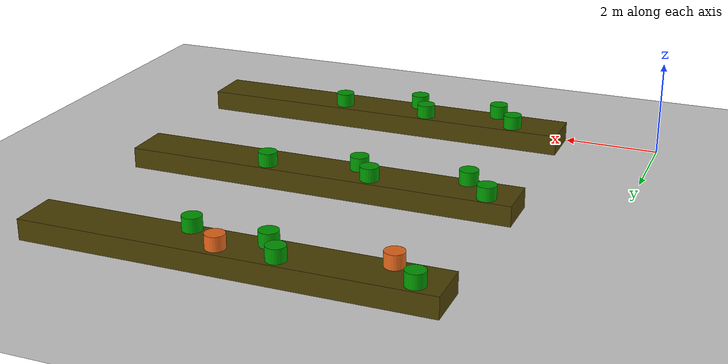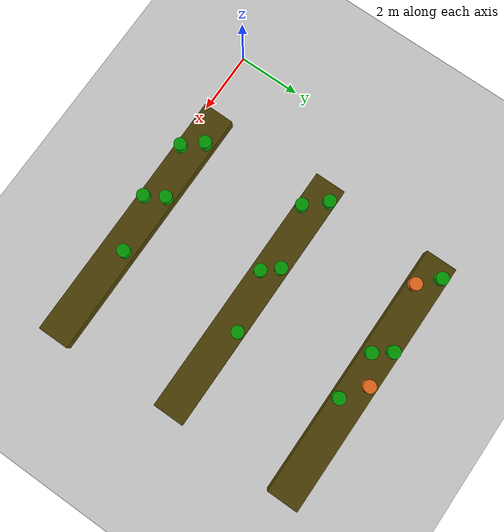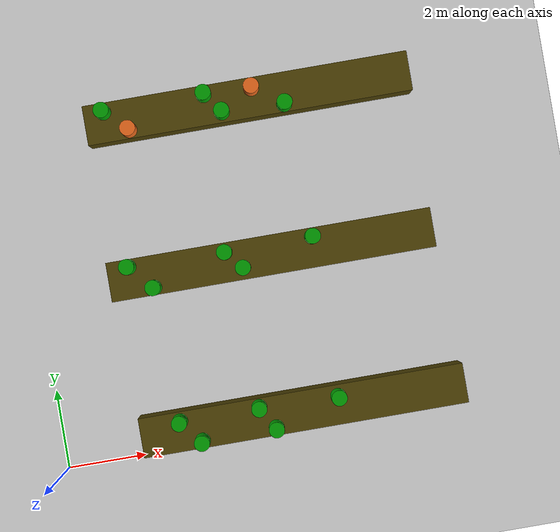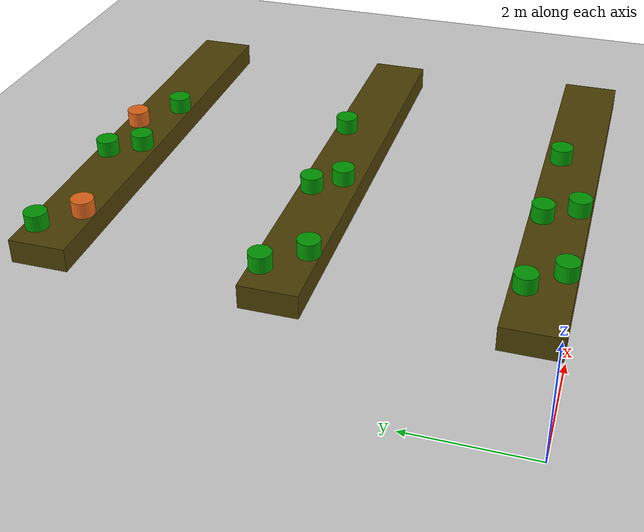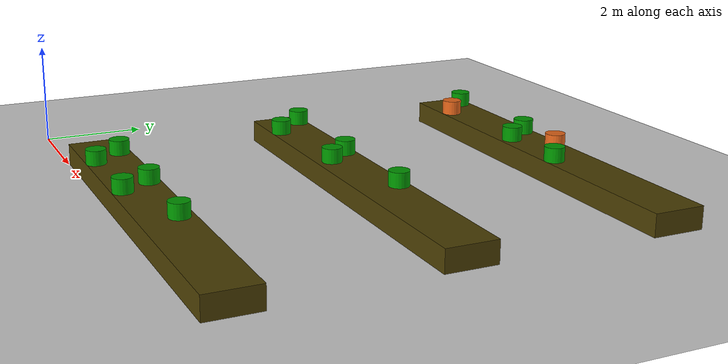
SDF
<sdf version="1.7">
 <world name="default">
  <model name="ground_plane">
   <static>1</static>
   <link name="link">
    <collision name="collision">
     <geometry><plane><normal>0 0 1</normal><size>100 100</size></plane></geometry>
     <surface><friction><ode><mu>100</mu><mu2>50</mu2></ode></friction></surface>
    </collision>
    <visual name="visual">
     <cast_shadows>0</cast_shadows>
     <geometry><plane><normal>0 0 1</normal><size>100 100</size></plane></geometry>
     <material>
      <script><uri>file://media/materials/scripts/gazebo.material</uri><name>Gazebo/Grey</name></script>
     </material>
    </visual>
   </link>
  </model>
  <model name="Test_Bench_brown">
   <link name="link_1">
    <inertial>
     <mass>6.47546</mass>
     <inertia><ixx>0.639529</ixx><ixy>0</ixy><ixz>0</ixz><iyy>122.309</iyy><iyz>0</iyz><izz>122.749</izz></inertia>
    </inertial>
    <pose>0 4e-06 0 0 -0 0</pose>
    <visual name="visual">
     <geometry><box><size>8.26903 1 0.430283</size></box></geometry>
     <material>
      <lighting>1</lighting>
      <script><uri>file://media/materials/scripts/gazebo.material</uri><name>Gazebo/Grey</name></script>
      <shader type="pixel"><normal_map>__default__</normal_map></shader>
      <diffuse>0.298 0.247 0.016 1</diffuse>
      <ambient>0.3 0.3 0.3 1</ambient>
      <specular>0.01 0.01 0.01 1</specular>
      <emissive>0 0 0 1</emissive>
     </material>
    </visual>
    <collision name="collision">
     <geometry><box><size>8.26903 1 0.430283</size></box></geometry>
     <surface>
      <friction>
       <ode><mu>1</mu><mu2>1</mu2><fdir1>0 0 0</fdir1><slip1>0</slip1><slip2>0</slip2></ode>
       <torsional>
        <coefficient>1</coefficient>
        <patch_radius>0</patch_radius>
        <surface_radius>0</surface_radius>
        <use_patch_radius>1</use_patch_radius>
        <ode><slip>0</slip></ode>
       </torsional>
      </friction>
      <bounce><restitution_coefficient>0</restitution_coefficient><threshold>1e+06</threshold></bounce>
      <contact>
       <collide_without_contact>0</collide_without_contact>
       <collide_without_contact_bitmask>1</collide_without_contact_bitmask>
       <collide_bitmask>1</collide_bitmask>
       <ode>
        <soft_cfm>0</soft_cfm>
        <soft_erp>0.2</soft_erp>
        <kp>1e+13</kp>
        <kd>1</kd>
        <max_vel>0.01</max_vel>
        <min_depth>0</min_depth>
       </ode>
       <bullet>
        <split_impulse>1</split_impulse>
        <split_impulse_penetration_threshold>-0.01</split_impulse_penetration_threshold>
        <soft_cfm>0</soft_cfm>
        <soft_erp>0.2</soft_erp>
        <kp>1e+13</kp>
        <kd>1</kd>
       </bullet>
      </contact>
     </surface>
    </collision>
   </link>
   <static>0</static>
   <pose>6.16421 0.520482 0.215125 -1.4e-05 -0 1e-05</pose>
  </model>
  <model name="Test_pot_green">
   <link name="link_0">
    <inertial>
     <mass>0.044841</mass>
     <inertia>
      <ixx>0.00074807</ixx>
      <ixy>0</ixy>
      <ixz>0</ixz>
      <iyy>0.00074807</iyy>
      <iyz>0</iyz>
      <izz>0.00086495</izz>
     </inertia>
    </inertial>
    <pose>3e-06 1e-06 0 0 -0 0</pose>
    <visual name="visual">
     <geometry><cylinder><radius>0.196415</radius><length>0.290612</length></cylinder></geometry>
     <material>
      <lighting>1</lighting>
      <script><uri>file://media/materials/scripts/gazebo.material</uri><name>Gazebo/Grey</name></script>
      <shader type="pixel"><normal_map>__default__</normal_map></shader>
      <diffuse>0 0.6 0 0</diffuse>
      <ambient>0.3 0.3 0.3 1</ambient>
      <specular>0.01 0.01 0.01 1</specular>
      <emissive>0 0 0 1</emissive>
     </material>
    </visual>
    <collision name="collision">
     <geometry><cylinder><radius>0.196415</radius><length>0.290612</length></cylinder></geometry>
     <surface>
      <friction>
       <ode><mu>1</mu><mu2>1</mu2><fdir1>0 0 0</fdir1><slip1>0</slip1><slip2>0</slip2></ode>
       <torsional>
        <coefficient>1</coefficient>
        <patch_radius>0</patch_radius>
        <surface_radius>0</surface_radius>
        <use_patch_radius>1</use_patch_radius>
        <ode><slip>0</slip></ode>
       </torsional>
      </friction>
      <bounce><restitution_coefficient>0</restitution_coefficient><threshold>1e+06</threshold></bounce>
      <contact>
       <collide_without_contact>0</collide_without_contact>
       <collide_without_contact_bitmask>1</collide_without_contact_bitmask>
       <collide_bitmask>1</collide_bitmask>
       <ode>
        <soft_cfm>0</soft_cfm>
        <soft_erp>0.2</soft_erp>
        <kp>1e+13</kp>
        <kd>1</kd>
        <max_vel>0.01</max_vel>
        <min_depth>0</min_depth>
       </ode>
       <bullet>
        <split_impulse>1</split_impulse>
        <split_impulse_penetration_threshold>-0.01</split_impulse_penetration_threshold>
        <soft_cfm>0</soft_cfm>
        <soft_erp>0.2</soft_erp>
        <kp>1e+13</kp>
        <kd>1</kd>
       </bullet>
      </contact>
     </surface>
    </collision>
   </link>
   <static>0</static>
   <pose>3.5522 0.210064 0.575581 6.3e-05 -8.7e-05 0.011992</pose>
  </model>
  <model name="Test_Bench_brown_clone_0">
   <link name="link_1">
    <inertial>
     <mass>6.47546</mass>
     <inertia><ixx>0.639529</ixx><ixy>0</ixy><ixz>0</ixz><iyy>122.309</iyy><iyz>0</iyz><izz>122.749</izz></inertia>
    </inertial>
    <pose>0 4e-06 0 0 -0 0</pose>
    <visual name="visual">
     <geometry><box><size>8.26902 1 0.430283</size></box></geometry>
     <material>
      <lighting>1</lighting>
      <script><uri>file://media/materials/scripts/gazebo.material</uri><name>Gazebo/Grey</name></script>
      <shader type="pixel"><normal_map>__default__</normal_map></shader>
      <diffuse>0.298 0.247 0.016 1</diffuse>
      <ambient>0.3 0.3 0.3 1</ambient>
      <specular>0.01 0.01 0.01 1</specular>
      <emissive>0 0 0 1</emissive>
     </material>
    </visual>
    <collision name="collision">
     <geometry><box><size>8.26902 1 0.430283</size></box></geometry>
     <surface>
      <friction>
       <ode><mu>1</mu><mu2>1</mu2><fdir1>0 0 0</fdir1><slip1>0</slip1><slip2>0</slip2></ode>
       <torsional>
        <coefficient>1</coefficient>
        <patch_radius>0</patch_radius>
        <surface_radius>0</surface_radius>
        <use_patch_radius>1</use_patch_radius>
        <ode><slip>0</slip></ode>
       </torsional>
      </friction>
      <bounce><restitution_coefficient>0</restitution_coefficient><threshold>1e+06</threshold></bounce>
      <contact>
       <collide_without_contact>0</collide_without_contact>
       <collide_without_contact_bitmask>1</collide_without_contact_bitmask>
       <collide_bitmask>1</collide_bitmask>
       <ode>
        <soft_cfm>0</soft_cfm>
        <soft_erp>0.2</soft_erp>
        <kp>1e+13</kp>
        <kd>1</kd>
        <max_vel>0.01</max_vel>
        <min_depth>0</min_depth>
       </ode>
       <bullet>
        <split_impulse>1</split_impulse>
        <split_impulse_penetration_threshold>-0.01</split_impulse_penetration_threshold>
        <soft_cfm>0</soft_cfm>
        <soft_erp>0.2</soft_erp>
        <kp>1e+13</kp>
        <kd>1</kd>
       </bullet>
      </contact>
     </surface>
    </collision>
   </link>
   <static>0</static>
   <pose>6.02902 4.51582 0.210183 0.000215 -1.1e-05 2e-06</pose>
  </model>
  <model name="Test_Bench_brown_clone_2">
   <link name="link_1">
    <inertial>
     <mass>6.47546</mass>
     <inertia><ixx>0.639529</ixx><ixy>0</ixy><ixz>0</ixz><iyy>122.309</iyy><iyz>0</iyz><izz>122.749</izz></inertia>
    </inertial>
    <pose>0 4e-06 0 0 -0 0</pose>
    <visual name="visual">
     <geometry><box><size>8.26902 1 0.430283</size></box></geometry>
     <material>
      <lighting>1</lighting>
      <script><uri>file://media/materials/scripts/gazebo.material</uri><name>Gazebo/Grey</name></script>
      <shader type="pixel"><normal_map>__default__</normal_map></shader>
      <diffuse>0.298 0.247 0.016 1</diffuse>
      <ambient>0.3 0.3 0.3 1</ambient>
      <specular>0.01 0.01 0.01 1</specular>
      <emissive>0 0 0 1</emissive>
     </material>
    </visual>
    <collision name="collision">
     <geometry><box><size>8.26902 1 0.430283</size></box></geometry>
     <surface>
      <friction>
       <ode><mu>1</mu><mu2>1</mu2><fdir1>0 0 0</fdir1><slip1>0</slip1><slip2>0</slip2></ode>
       <torsional>
        <coefficient>1</coefficient>
        <patch_radius>0</patch_radius>
        <surface_radius>0</surface_radius>
        <use_patch_radius>1</use_patch_radius>
        <ode><slip>0</slip></ode>
       </torsional>
      </friction>
      <bounce><restitution_coefficient>0</restitution_coefficient><threshold>1e+06</threshold></bounce>
      <contact>
       <collide_without_contact>0</collide_without_contact>
       <collide_without_contact_bitmask>1</collide_without_contact_bitmask>
       <collide_bitmask>1</collide_bitmask>
       <ode>
        <soft_cfm>0</soft_cfm>
        <soft_erp>0.2</soft_erp>
        <kp>1e+13</kp>
        <kd>1</kd>
        <max_vel>0.01</max_vel>
        <min_depth>0</min_depth>
       </ode>
       <bullet>
        <split_impulse>1</split_impulse>
        <split_impulse_penetration_threshold>-0.01</split_impulse_penetration_threshold>
        <soft_cfm>0</soft_cfm>
        <soft_erp>0.2</soft_erp>
        <kp>1e+13</kp>
        <kd>1</kd>
       </bullet>
      </contact>
     </surface>
    </collision>
   </link>
   <static>0</static>
   <pose>6.11341 8.4951 0.215141 0 -0 -3e-06</pose>
  </model>
  <model name="Test_pot_green_clone">
   <link name="link_0">
    <inertial>
     <mass>0.044841</mass>
     <inertia>
      <ixx>0.00074807</ixx>
      <ixy>0</ixy>
      <ixz>0</ixz>
      <iyy>0.00074807</iyy>
      <iyz>0</iyz>
      <izz>0.00086495</izz>
     </inertia>
    </inertial>
    <pose>3e-06 1e-06 0 0 -0 0</pose>
    <visual name="visual">
     <geometry><cylinder><radius>0.196415</radius><length>0.290612</length></cylinder></geometry>
     <material>
      <lighting>1</lighting>
      <script><uri>file://media/materials/scripts/gazebo.material</uri><name>Gazebo/Grey</name></script>
      <shader type="pixel"><normal_map>__default__</normal_map></shader>
      <diffuse>0 0.6 0 0</diffuse>
      <ambient>0.3 0.3 0.3 1</ambient>
      <specular>0.01 0.01 0.01 1</specular>
      <emissive>0 0 0 1</emissive>
     </material>
    </visual>
    <collision name="collision">
     <geometry><cylinder><radius>0.196415</radius><length>0.290612</length></cylinder></geometry>
     <surface>
      <friction>
       <ode><mu>1</mu><mu2>1</mu2><fdir1>0 0 0</fdir1><slip1>0</slip1><slip2>0</slip2></ode>
       <torsional>
        <coefficient>1</coefficient>
        <patch_radius>0</patch_radius>
        <surface_radius>0</surface_radius>
        <use_patch_radius>1</use_patch_radius>
        <ode><slip>0</slip></ode>
       </torsional>
      </friction>
      <bounce><restitution_coefficient>0</restitution_coefficient><threshold>1e+06</threshold></bounce>
      <contact>
       <collide_without_contact>0</collide_without_contact>
       <collide_without_contact_bitmask>1</collide_without_contact_bitmask>
       <collide_bitmask>1</collide_bitmask>
       <ode>
        <soft_cfm>0</soft_cfm>
        <soft_erp>0.2</soft_erp>
        <kp>1e+13</kp>
        <kd>1</kd>
        <max_vel>0.01</max_vel>
        <min_depth>0</min_depth>
       </ode>
       <bullet>
        <split_impulse>1</split_impulse>
        <split_impulse_penetration_threshold>-0.01</split_impulse_penetration_threshold>
        <soft_cfm>0</soft_cfm>
        <soft_erp>0.2</soft_erp>
        <kp>1e+13</kp>
        <kd>1</kd>
       </bullet>
      </contact>
     </surface>
    </collision>
   </link>
   <static>0</static>
   <pose>3.00083 4.20327 0.570529 0.000259 -1.5e-05 0.007801</pose>
  </model>
  <model name="Test_pot_green_clone_5">
   <link name="link_0">
    <inertial>
     <mass>0.044841</mass>
     <inertia>
      <ixx>0.00074807</ixx>
      <ixy>0</ixy>
      <ixz>0</ixz>
      <iyy>0.00074807</iyy>
      <iyz>0</iyz>
      <izz>0.00086495</izz>
     </inertia>
    </inertial>
    <pose>3e-06 1e-06 0 0 -0 0</pose>
    <visual name="visual">
     <geometry><cylinder><radius>0.196415</radius><length>0.290612</length></cylinder></geometry>
     <material>
      <lighting>1</lighting>
      <script><uri>file://media/materials/scripts/gazebo.material</uri><name>Gazebo/Grey</name></script>
      <shader type="pixel"><normal_map>__default__</normal_map></shader>
      <diffuse>0 0.6 0 0</diffuse>
      <ambient>0.3 0.3 0.3 1</ambient>
      <specular>0.01 0.01 0.01 1</specular>
      <emissive>0 0 0 1</emissive>
     </material>
    </visual>
    <collision name="collision">
     <geometry><cylinder><radius>0.196415</radius><length>0.290612</length></cylinder></geometry>
     <surface>
      <friction>
       <ode><mu>1</mu><mu2>1</mu2><fdir1>0 0 0</fdir1><slip1>0</slip1><slip2>0</slip2></ode>
       <torsional>
        <coefficient>1</coefficient>
        <patch_radius>0</patch_radius>
        <surface_radius>0</surface_radius>
        <use_patch_radius>1</use_patch_radius>
        <ode><slip>0</slip></ode>
       </torsional>
      </friction>
      <bounce><restitution_coefficient>0</restitution_coefficient><threshold>1e+06</threshold></bounce>
      <contact>
       <collide_without_contact>0</collide_without_contact>
       <collide_without_contact_bitmask>1</collide_without_contact_bitmask>
       <collide_bitmask>1</collide_bitmask>
       <ode>
        <soft_cfm>0</soft_cfm>
        <soft_erp>0.2</soft_erp>
        <kp>1e+13</kp>
        <kd>1</kd>
        <max_vel>0.01</max_vel>
        <min_depth>0</min_depth>
       </ode>
       <bullet>
        <split_impulse>1</split_impulse>
        <split_impulse_penetration_threshold>-0.01</split_impulse_penetration_threshold>
        <soft_cfm>0</soft_cfm>
        <soft_erp>0.2</soft_erp>
        <kp>1e+13</kp>
        <kd>1</kd>
       </bullet>
      </contact>
     </surface>
    </collision>
   </link>
   <static>0</static>
   <pose>3.07291 0.783458 0.575572 -3.1e-05 5e-06 0.005861</pose>
  </model>
  <model name="Test_pot_green_clone_6">
   <link name="link_0">
    <inertial>
     <mass>0.044841</mass>
     <inertia>
      <ixx>0.00074807</ixx>
      <ixy>0</ixy>
      <ixz>0</ixz>
      <iyy>0.00074807</iyy>
      <iyz>0</iyz>
      <izz>0.00086495</izz>
     </inertia>
    </inertial>
    <pose>3e-06 1e-06 0 0 -0 0</pose>
    <visual name="visual">
     <geometry><cylinder><radius>0.196415</radius><length>0.290612</length></cylinder></geometry>
     <material>
      <lighting>1</lighting>
      <script><uri>file://media/materials/scripts/gazebo.material</uri><name>Gazebo/Grey</name></script>
      <shader type="pixel"><normal_map>__default__</normal_map></shader>
      <diffuse>0 0.6 0 0</diffuse>
      <ambient>0.3 0.3 0.3 1</ambient>
      <specular>0.01 0.01 0.01 1</specular>
      <emissive>0 0 0 1</emissive>
     </material>
    </visual>
    <collision name="collision">
     <geometry><cylinder><radius>0.196415</radius><length>0.290612</length></cylinder></geometry>
     <surface>
      <friction>
       <ode><mu>1</mu><mu2>1</mu2><fdir1>0 0 0</fdir1><slip1>0</slip1><slip2>0</slip2></ode>
       <torsional>
        <coefficient>1</coefficient>
        <patch_radius>0</patch_radius>
        <surface_radius>0</surface_radius>
        <use_patch_radius>1</use_patch_radius>
        <ode><slip>0</slip></ode>
       </torsional>
      </friction>
      <bounce><restitution_coefficient>0</restitution_coefficient><threshold>1e+06</threshold></bounce>
      <contact>
       <collide_without_contact>0</collide_without_contact>
       <collide_without_contact_bitmask>1</collide_without_contact_bitmask>
       <collide_bitmask>1</collide_bitmask>
       <ode>
        <soft_cfm>0</soft_cfm>
        <soft_erp>0.2</soft_erp>
        <kp>1e+13</kp>
        <kd>1</kd>
        <max_vel>0.01</max_vel>
        <min_depth>0</min_depth>
       </ode>
       <bullet>
        <split_impulse>1</split_impulse>
        <split_impulse_penetration_threshold>-0.01</split_impulse_penetration_threshold>
        <soft_cfm>0</soft_cfm>
        <soft_erp>0.2</soft_erp>
        <kp>1e+13</kp>
        <kd>1</kd>
       </bullet>
      </contact>
     </surface>
    </collision>
   </link>
   <static>0</static>
   <pose>2.44781 4.82061 0.575584 -2.3e-05 8e-06 0.004116</pose>
  </model>
  <model name="Test_pot_green_clone_7">
   <link name="link_0">
    <inertial>
     <mass>0.044841</mass>
     <inertia>
      <ixx>0.00074807</ixx>
      <ixy>0</ixy>
      <ixz>0</ixz>
      <iyy>0.00074807</iyy>
      <iyz>0</iyz>
      <izz>0.00086495</izz>
     </inertia>
    </inertial>
    <pose>3e-06 1e-06 0 0 -0 0</pose>
    <visual name="visual">
     <geometry><cylinder><radius>0.196415</radius><length>0.290612</length></cylinder></geometry>
     <material>
      <lighting>1</lighting>
      <script><uri>file://media/materials/scripts/gazebo.material</uri><name>Gazebo/Grey</name></script>
      <shader type="pixel"><normal_map>__default__</normal_map></shader>
      <diffuse>0 0.6 0 0</diffuse>
      <ambient>0.3 0.3 0.3 1</ambient>
      <specular>0.01 0.01 0.01 1</specular>
      <emissive>0 0 0 1</emissive>
     </material>
    </visual>
    <collision name="collision">
     <geometry><cylinder><radius>0.196415</radius><length>0.290612</length></cylinder></geometry>
     <surface>
      <friction>
       <ode><mu>1</mu><mu2>1</mu2><fdir1>0 0 0</fdir1><slip1>0</slip1><slip2>0</slip2></ode>
       <torsional>
        <coefficient>1</coefficient>
        <patch_radius>0</patch_radius>
        <surface_radius>0</surface_radius>
        <use_patch_radius>1</use_patch_radius>
        <ode><slip>0</slip></ode>
       </torsional>
      </friction>
      <bounce><restitution_coefficient>0</restitution_coefficient><threshold>1e+06</threshold></bounce>
      <contact>
       <collide_without_contact>0</collide_without_contact>
       <collide_without_contact_bitmask>1</collide_without_contact_bitmask>
       <collide_bitmask>1</collide_bitmask>
       <ode>
        <soft_cfm>0</soft_cfm>
        <soft_erp>0.2</soft_erp>
        <kp>1e+13</kp>
        <kd>1</kd>
        <max_vel>0.01</max_vel>
        <min_depth>0</min_depth>
       </ode>
       <bullet>
        <split_impulse>1</split_impulse>
        <split_impulse_penetration_threshold>-0.01</split_impulse_penetration_threshold>
        <soft_cfm>0</soft_cfm>
        <soft_erp>0.2</soft_erp>
        <kp>1e+13</kp>
        <kd>1</kd>
       </bullet>
      </contact>
     </surface>
    </collision>
   </link>
   <static>0</static>
   <pose>7.12233 4.79731 0.575589 -1.4e-05 1e-05 0.005384</pose>
  </model>
  <model name="Test_pot_green_clone_9">
   <link name="link_0">
    <inertial>
     <mass>0.044841</mass>
     <inertia>
      <ixx>0.00074807</ixx>
      <ixy>0</ixy>
      <ixz>0</ixz>
      <iyy>0.00074807</iyy>
      <iyz>0</iyz>
      <izz>0.00086495</izz>
     </inertia>
    </inertial>
    <pose>3e-06 1e-06 0 0 -0 0</pose>
    <visual name="visual">
     <geometry><cylinder><radius>0.196415</radius><length>0.290612</length></cylinder></geometry>
     <material>
      <lighting>1</lighting>
      <script><uri>file://media/materials/scripts/gazebo.material</uri><name>Gazebo/Grey</name></script>
      <shader type="pixel"><normal_map>__default__</normal_map></shader>
      <diffuse>0 0.6 0 0</diffuse>
      <ambient>0.3 0.3 0.3 1</ambient>
      <specular>0.01 0.01 0.01 1</specular>
      <emissive>0 0 0 1</emissive>
     </material>
    </visual>
    <collision name="collision">
     <geometry><cylinder><radius>0.196415</radius><length>0.290612</length></cylinder></geometry>
     <surface>
      <friction>
       <ode><mu>1</mu><mu2>1</mu2><fdir1>0 0 0</fdir1><slip1>0</slip1><slip2>0</slip2></ode>
       <torsional>
        <coefficient>1</coefficient>
        <patch_radius>0</patch_radius>
        <surface_radius>0</surface_radius>
        <use_patch_radius>1</use_patch_radius>
        <ode><slip>0</slip></ode>
       </torsional>
      </friction>
      <bounce><restitution_coefficient>0</restitution_coefficient><threshold>1e+06</threshold></bounce>
      <contact>
       <collide_without_contact>0</collide_without_contact>
       <collide_without_contact_bitmask>1</collide_without_contact_bitmask>
       <collide_bitmask>1</collide_bitmask>
       <ode>
        <soft_cfm>0</soft_cfm>
        <soft_erp>0.2</soft_erp>
        <kp>1e+13</kp>
        <kd>1</kd>
        <max_vel>0.01</max_vel>
        <min_depth>0</min_depth>
       </ode>
       <bullet>
        <split_impulse>1</split_impulse>
        <split_impulse_penetration_threshold>-0.01</split_impulse_penetration_threshold>
        <soft_cfm>0</soft_cfm>
        <soft_erp>0.2</soft_erp>
        <kp>1e+13</kp>
        <kd>1</kd>
       </bullet>
      </contact>
     </surface>
    </collision>
   </link>
   <static>0</static>
   <pose>7.09067 0.736442 0.575559 4e-06 -0 0.005458</pose>
  </model>
  <model name="Test_pot_green_clone_4_clone">
   <link name="link_0">
    <inertial>
     <mass>0.044841</mass>
     <inertia>
      <ixx>0.00074807</ixx>
      <ixy>0</ixy>
      <ixz>0</ixz>
      <iyy>0.00074807</iyy>
      <iyz>0</iyz>
      <izz>0.00086495</izz>
     </inertia>
    </inertial>
    <pose>3e-06 1e-06 0 0 -0 0</pose>
    <visual name="visual">
     <geometry><cylinder><radius>0.196415</radius><length>0.290612</length></cylinder></geometry>
     <material>
      <lighting>1</lighting>
      <script><uri>file://media/materials/scripts/gazebo.material</uri><name>Gazebo/Grey</name></script>
      <shader type="pixel"><normal_map>__default__</normal_map></shader>
      <diffuse>0 0.6 0 0</diffuse>
      <ambient>0.3 0.3 0.3 1</ambient>
      <specular>0.01 0.01 0.01 1</specular>
      <emissive>0 0 0 1</emissive>
     </material>
    </visual>
    <collision name="collision">
     <geometry><cylinder><radius>0.196415</radius><length>0.290612</length></cylinder></geometry>
     <surface>
      <friction>
       <ode><mu>1</mu><mu2>1</mu2><fdir1>0 0 0</fdir1><slip1>0</slip1><slip2>0</slip2></ode>
       <torsional>
        <coefficient>1</coefficient>
        <patch_radius>0</patch_radius>
        <surface_radius>0</surface_radius>
        <use_patch_radius>1</use_patch_radius>
        <ode><slip>0</slip></ode>
       </torsional>
      </friction>
      <bounce><restitution_coefficient>0</restitution_coefficient><threshold>1e+06</threshold></bounce>
      <contact>
       <collide_without_contact>0</collide_without_contact>
       <collide_without_contact_bitmask>1</collide_without_contact_bitmask>
       <collide_bitmask>1</collide_bitmask>
       <ode>
        <soft_cfm>0</soft_cfm>
        <soft_erp>0.2</soft_erp>
        <kp>1e+13</kp>
        <kd>1</kd>
        <max_vel>0.01</max_vel>
        <min_depth>0</min_depth>
       </ode>
       <bullet>
        <split_impulse>1</split_impulse>
        <split_impulse_penetration_threshold>-0.01</split_impulse_penetration_threshold>
        <soft_cfm>0</soft_cfm>
        <soft_erp>0.2</soft_erp>
        <kp>1e+13</kp>
        <kd>1</kd>
       </bullet>
      </contact>
     </surface>
    </collision>
   </link>
   <static>0</static>
   <pose>2.48873 8.75207 0.575603 7.2e-05 3e-06 0.010251</pose>
  </model>
  <model name="Test_pot_green_clone_4_clone_0">
   <link name="link_0">
    <inertial>
     <mass>0.044841</mass>
     <inertia>
      <ixx>0.00074807</ixx>
      <ixy>0</ixy>
      <ixz>0</ixz>
      <iyy>0.00074807</iyy>
      <iyz>0</iyz>
      <izz>0.00086495</izz>
     </inertia>
    </inertial>
    <pose>3e-06 1e-06 0 0 -0 0</pose>
    <visual name="visual">
     <geometry><cylinder><radius>0.196415</radius><length>0.290612</length></cylinder></geometry>
     <material>
      <lighting>1</lighting>
      <script><uri>file://media/materials/scripts/gazebo.material</uri><name>Gazebo/Grey</name></script>
      <shader type="pixel"><normal_map>__default__</normal_map></shader>
      <diffuse>0 0.6 0 0</diffuse>
      <ambient>0.3 0.3 0.3 1</ambient>
      <specular>0.01 0.01 0.01 1</specular>
      <emissive>0 0 0 1</emissive>
     </material>
    </visual>
    <collision name="collision">
     <geometry><cylinder><radius>0.196415</radius><length>0.290612</length></cylinder></geometry>
     <surface>
      <friction>
       <ode><mu>1</mu><mu2>1</mu2><fdir1>0 0 0</fdir1><slip1>0</slip1><slip2>0</slip2></ode>
       <torsional>
        <coefficient>1</coefficient>
        <patch_radius>0</patch_radius>
        <surface_radius>0</surface_radius>
        <use_patch_radius>1</use_patch_radius>
        <ode><slip>0</slip></ode>
       </torsional>
      </friction>
      <bounce><restitution_coefficient>0</restitution_coefficient><threshold>1e+06</threshold></bounce>
      <contact>
       <collide_without_contact>0</collide_without_contact>
       <collide_without_contact_bitmask>1</collide_without_contact_bitmask>
       <collide_bitmask>1</collide_bitmask>
       <ode>
        <soft_cfm>0</soft_cfm>
        <soft_erp>0.2</soft_erp>
        <kp>1e+13</kp>
        <kd>1</kd>
        <max_vel>0.01</max_vel>
        <min_depth>0</min_depth>
       </ode>
       <bullet>
        <split_impulse>1</split_impulse>
        <split_impulse_penetration_threshold>-0.01</split_impulse_penetration_threshold>
        <soft_cfm>0</soft_cfm>
        <soft_erp>0.2</soft_erp>
        <kp>1e+13</kp>
        <kd>1</kd>
       </bullet>
      </contact>
     </surface>
    </collision>
   </link>
   <static>0</static>
   <pose>6.99942 8.18647 0.575608 4e-06 -4.5e-05 0.013471</pose>
  </model>
  <model name="Test_pot_orange_clone_clone_1">
   <link name="link_0">
    <inertial>
     <mass>0.044841</mass>
     <inertia>
      <ixx>0.00074807</ixx>
      <ixy>0</ixy>
      <ixz>0</ixz>
      <iyy>0.00074807</iyy>
      <iyz>0</iyz>
      <izz>0.00086495</izz>
     </inertia>
    </inertial>
    <pose>3e-06 1e-06 -0 0 -0 0</pose>
    <visual name="visual">
     <geometry><cylinder><radius>0.196415</radius><length>0.290612</length></cylinder></geometry>
     <material>
      <lighting>1</lighting>
      <script><uri>file://media/materials/scripts/gazebo.material</uri><name>Gazebo/Grey</name></script>
      <shader type="pixel"><normal_map>__default__</normal_map></shader>
      <ambient>0.3 0.3 0.3 1</ambient>
      <diffuse>0.9 0.4 0.1 1</diffuse>
      <specular>0.01 0.01 0.01 1</specular>
      <emissive>0 0 0 1</emissive>
     </material>
    </visual>
    <collision name="collision">
     <geometry><cylinder><radius>0.196415</radius><length>0.290612</length></cylinder></geometry>
     <surface>
      <friction>
       <ode><mu>1</mu><mu2>1</mu2><fdir1>0 0 0</fdir1><slip1>0</slip1><slip2>0</slip2></ode>
       <torsional>
        <coefficient>1</coefficient>
        <patch_radius>0</patch_radius>
        <surface_radius>0</surface_radius>
        <use_patch_radius>1</use_patch_radius>
        <ode><slip>0</slip></ode>
       </torsional>
      </friction>
      <bounce><restitution_coefficient>0</restitution_coefficient><threshold>1e+06</threshold></bounce>
      <contact>
       <collide_without_contact>0</collide_without_contact>
       <collide_without_contact_bitmask>1</collide_without_contact_bitmask>
       <collide_bitmask>1</collide_bitmask>
       <ode>
        <soft_cfm>0</soft_cfm>
        <soft_erp>0.2</soft_erp>
        <kp>1e+13</kp>
        <kd>1</kd>
        <max_vel>0.01</max_vel>
        <min_depth>0</min_depth>
       </ode>
       <bullet>
        <split_impulse>1</split_impulse>
        <split_impulse_penetration_threshold>-0.01</split_impulse_penetration_threshold>
        <soft_cfm>0</soft_cfm>
        <soft_erp>0.2</soft_erp>
        <kp>1e+13</kp>
        <kd>1</kd>
       </bullet>
      </contact>
     </surface>
    </collision>
   </link>
   <static>0</static>
   <pose>6.24561 8.71791 0.575592 1.7e-05 -0 0.002824</pose>
  </model>
  <model name="Test_pot_orange_clone_clone_2">
   <link name="link_0">
    <inertial>
     <mass>0.044841</mass>
     <inertia>
      <ixx>0.00074807</ixx>
      <ixy>0</ixy>
      <ixz>0</ixz>
      <iyy>0.00074807</iyy>
      <iyz>0</iyz>
      <izz>0.00086495</izz>
     </inertia>
    </inertial>
    <pose>3e-06 1e-06 -0 0 -0 0</pose>
    <visual name="visual">
     <geometry><cylinder><radius>0.196415</radius><length>0.290612</length></cylinder></geometry>
     <material>
      <lighting>1</lighting>
      <script><uri>file://media/materials/scripts/gazebo.material</uri><name>Gazebo/Grey</name></script>
      <shader type="pixel"><normal_map>__default__</normal_map></shader>
      <ambient>0.3 0.3 0.3 1</ambient>
      <diffuse>0.9 0.4 0.1 1</diffuse>
      <specular>0.01 0.01 0.01 1</specular>
      <emissive>0 0 0 1</emissive>
     </material>
    </visual>
    <collision name="collision">
     <geometry><cylinder><radius>0.196415</radius><length>0.290612</length></cylinder></geometry>
     <surface>
      <friction>
       <ode><mu>1</mu><mu2>1</mu2><fdir1>0 0 0</fdir1><slip1>0</slip1><slip2>0</slip2></ode>
       <torsional>
        <coefficient>1</coefficient>
        <patch_radius>0</patch_radius>
        <surface_radius>0</surface_radius>
        <use_patch_radius>1</use_patch_radius>
        <ode><slip>0</slip></ode>
       </torsional>
      </friction>
      <bounce><restitution_coefficient>0</restitution_coefficient><threshold>1e+06</threshold></bounce>
      <contact>
       <collide_without_contact>0</collide_without_contact>
       <collide_without_contact_bitmask>1</collide_without_contact_bitmask>
       <collide_bitmask>1</collide_bitmask>
       <ode>
        <soft_cfm>0</soft_cfm>
        <soft_erp>0.2</soft_erp>
        <kp>1e+13</kp>
        <kd>1</kd>
        <max_vel>0.01</max_vel>
        <min_depth>0</min_depth>
       </ode>
       <bullet>
        <split_impulse>1</split_impulse>
        <split_impulse_penetration_threshold>-0.01</split_impulse_penetration_threshold>
        <soft_cfm>0</soft_cfm>
        <soft_erp>0.2</soft_erp>
        <kp>1e+13</kp>
        <kd>1</kd>
       </bullet>
      </contact>
     </surface>
    </collision>
   </link>
   <static>0</static>
   <pose>3.06034 8.20521 0.575594 2.3e-05 -0 0.005222</pose>
  </model>
  <model name="Test_pot_green_clone_11">
   <link name="link_0">
    <inertial>
     <mass>0.044841</mass>
     <inertia>
      <ixx>0.00074807</ixx>
      <ixy>0</ixy>
      <ixz>0</ixz>
      <iyy>0.00074807</iyy>
      <iyz>0</iyz>
      <izz>0.00086495</izz>
     </inertia>
    </inertial>
    <pose>3e-06 1e-06 0 0 -0 0</pose>
    <visual name="visual">
     <geometry><cylinder><radius>0.196415</radius><length>0.290612</length></cylinder></geometry>
     <material>
      <lighting>1</lighting>
      <script><uri>file://media/materials/scripts/gazebo.material</uri><name>Gazebo/Grey</name></script>
      <shader type="pixel"><normal_map>__default__</normal_map></shader>
      <diffuse>0 0.6 0 0</diffuse>
      <ambient>0.3 0.3 0.3 1</ambient>
      <specular>0.01 0.01 0.01 1</specular>
      <emissive>0 0 0 1</emissive>
     </material>
    </visual>
    <collision name="collision">
     <geometry><cylinder><radius>0.196415</radius><length>0.290612</length></cylinder></geometry>
     <surface>
      <friction>
       <ode><mu>1</mu><mu2>1</mu2><fdir1>0 0 0</fdir1><slip1>0</slip1><slip2>0</slip2></ode>
       <torsional>
        <coefficient>1</coefficient>
        <patch_radius>0</patch_radius>
        <surface_radius>0</surface_radius>
        <use_patch_radius>1</use_patch_radius>
        <ode><slip>0</slip></ode>
       </torsional>
      </friction>
      <bounce><restitution_coefficient>0</restitution_coefficient><threshold>1e+06</threshold></bounce>
      <contact>
       <collide_without_contact>0</collide_without_contact>
       <collide_without_contact_bitmask>1</collide_without_contact_bitmask>
       <collide_bitmask>1</collide_bitmask>
       <ode>
        <soft_cfm>0</soft_cfm>
        <soft_erp>0.2</soft_erp>
        <kp>1e+13</kp>
        <kd>1</kd>
        <max_vel>0.01</max_vel>
        <min_depth>0</min_depth>
       </ode>
       <bullet>
        <split_impulse>1</split_impulse>
        <split_impulse_penetration_threshold>-0.01</split_impulse_penetration_threshold>
        <soft_cfm>0</soft_cfm>
        <soft_erp>0.2</soft_erp>
        <kp>1e+13</kp>
        <kd>1</kd>
       </bullet>
      </contact>
     </surface>
    </collision>
   </link>
   <static>0</static>
   <pose>5.4318 0.223752 0.575558 -1.5e-05 2e-06 0.012599</pose>
  </model>
  <model name="Test_pot_green_clone_12">
   <link name="link_0">
    <inertial>
     <mass>0.044841</mass>
     <inertia>
      <ixx>0.00074807</ixx>
      <ixy>0</ixy>
      <ixz>0</ixz>
      <iyy>0.00074807</iyy>
      <iyz>0</iyz>
      <izz>0.00086495</izz>
     </inertia>
    </inertial>
    <pose>3e-06 1e-06 0 0 -0 0</pose>
    <visual name="visual">
     <geometry><cylinder><radius>0.196415</radius><length>0.290612</length></cylinder></geometry>
     <material>
      <lighting>1</lighting>
      <script><uri>file://media/materials/scripts/gazebo.material</uri><name>Gazebo/Grey</name></script>
      <shader type="pixel"><normal_map>__default__</normal_map></shader>
      <diffuse>0 0.6 0 0</diffuse>
      <ambient>0.3 0.3 0.3 1</ambient>
      <specular>0.01 0.01 0.01 1</specular>
      <emissive>0 0 0 1</emissive>
     </material>
    </visual>
    <collision name="collision">
     <geometry><cylinder><radius>0.196415</radius><length>0.290612</length></cylinder></geometry>
     <surface>
      <friction>
       <ode><mu>1</mu><mu2>1</mu2><fdir1>0 0 0</fdir1><slip1>0</slip1><slip2>0</slip2></ode>
       <torsional>
        <coefficient>1</coefficient>
        <patch_radius>0</patch_radius>
        <surface_radius>0</surface_radius>
        <use_patch_radius>1</use_patch_radius>
        <ode><slip>0</slip></ode>
       </torsional>
      </friction>
      <bounce><restitution_coefficient>0</restitution_coefficient><threshold>1e+06</threshold></bounce>
      <contact>
       <collide_without_contact>0</collide_without_contact>
       <collide_without_contact_bitmask>1</collide_without_contact_bitmask>
       <collide_bitmask>1</collide_bitmask>
       <ode>
        <soft_cfm>0</soft_cfm>
        <soft_erp>0.2</soft_erp>
        <kp>1e+13</kp>
        <kd>1</kd>
        <max_vel>0.01</max_vel>
        <min_depth>0</min_depth>
       </ode>
       <bullet>
        <split_impulse>1</split_impulse>
        <split_impulse_penetration_threshold>-0.01</split_impulse_penetration_threshold>
        <soft_cfm>0</soft_cfm>
        <soft_erp>0.2</soft_erp>
        <kp>1e+13</kp>
        <kd>1</kd>
       </bullet>
      </contact>
     </surface>
    </collision>
   </link>
   <static>0</static>
   <pose>5.09024 0.799789 0.575559 -2e-06 -1e-05 0.009716</pose>
  </model>
  <model name="Test_pot_green_clone_31">
   <link name="link_0">
    <inertial>
     <mass>0.044841</mass>
     <inertia>
      <ixx>0.00074807</ixx>
      <ixy>0</ixy>
      <ixz>0</ixz>
      <iyy>0.00074807</iyy>
      <iyz>0</iyz>
      <izz>0.00086495</izz>
     </inertia>
    </inertial>
    <pose>3e-06 1e-06 0 0 -0 0</pose>
    <visual name="visual">
     <geometry><cylinder><radius>0.196415</radius><length>0.290612</length></cylinder></geometry>
     <material>
      <lighting>1</lighting>
      <script><uri>file://media/materials/scripts/gazebo.material</uri><name>Gazebo/Grey</name></script>
      <shader type="pixel"><normal_map>__default__</normal_map></shader>
      <diffuse>0 0.6 0 0</diffuse>
      <ambient>0.3 0.3 0.3 1</ambient>
      <specular>0.01 0.01 0.01 1</specular>
      <emissive>0 0 0 1</emissive>
     </material>
    </visual>
    <collision name="collision">
     <geometry><cylinder><radius>0.196415</radius><length>0.290612</length></cylinder></geometry>
     <surface>
      <friction>
       <ode><mu>1</mu><mu2>1</mu2><fdir1>0 0 0</fdir1><slip1>0</slip1><slip2>0</slip2></ode>
       <torsional>
        <coefficient>1</coefficient>
        <patch_radius>0</patch_radius>
        <surface_radius>0</surface_radius>
        <use_patch_radius>1</use_patch_radius>
        <ode><slip>0</slip></ode>
       </torsional>
      </friction>
      <bounce><restitution_coefficient>0</restitution_coefficient><threshold>1e+06</threshold></bounce>
      <contact>
       <collide_without_contact>0</collide_without_contact>
       <collide_without_contact_bitmask>1</collide_without_contact_bitmask>
       <collide_bitmask>1</collide_bitmask>
       <ode>
        <soft_cfm>0</soft_cfm>
        <soft_erp>0.2</soft_erp>
        <kp>1e+13</kp>
        <kd>1</kd>
        <max_vel>0.01</max_vel>
        <min_depth>0</min_depth>
       </ode>
       <bullet>
        <split_impulse>1</split_impulse>
        <split_impulse_penetration_threshold>-0.01</split_impulse_penetration_threshold>
        <soft_cfm>0</soft_cfm>
        <soft_erp>0.2</soft_erp>
        <kp>1e+13</kp>
        <kd>1</kd>
       </bullet>
      </contact>
     </surface>
    </collision>
   </link>
   <static>0</static>
   <pose>5.28691 4.31766 0.575593 1.9e-05 4e-06 0.01195</pose>
  </model>
  <model name="Test_pot_green_clone_32">
   <link name="link_0">
    <inertial>
     <mass>0.044841</mass>
     <inertia>
      <ixx>0.00074807</ixx>
      <ixy>0</ixy>
      <ixz>0</ixz>
      <iyy>0.00074807</iyy>
      <iyz>0</iyz>
      <izz>0.00086495</izz>
     </inertia>
    </inertial>
    <pose>3e-06 1e-06 0 0 -0 0</pose>
    <visual name="visual">
     <geometry><cylinder><radius>0.196415</radius><length>0.290612</length></cylinder></geometry>
     <material>
      <lighting>1</lighting>
      <script><uri>file://media/materials/scripts/gazebo.material</uri><name>Gazebo/Grey</name></script>
      <shader type="pixel"><normal_map>__default__</normal_map></shader>
      <diffuse>0 0.6 0 0</diffuse>
      <ambient>0.3 0.3 0.3 1</ambient>
      <specular>0.01 0.01 0.01 1</specular>
      <emissive>0 0 0 1</emissive>
     </material>
    </visual>
    <collision name="collision">
     <geometry><cylinder><radius>0.196415</radius><length>0.290612</length></cylinder></geometry>
     <surface>
      <friction>
       <ode><mu>1</mu><mu2>1</mu2><fdir1>0 0 0</fdir1><slip1>0</slip1><slip2>0</slip2></ode>
       <torsional>
        <coefficient>1</coefficient>
        <patch_radius>0</patch_radius>
        <surface_radius>0</surface_radius>
        <use_patch_radius>1</use_patch_radius>
        <ode><slip>0</slip></ode>
       </torsional>
      </friction>
      <bounce><restitution_coefficient>0</restitution_coefficient><threshold>1e+06</threshold></bounce>
      <contact>
       <collide_without_contact>0</collide_without_contact>
       <collide_without_contact_bitmask>1</collide_without_contact_bitmask>
       <collide_bitmask>1</collide_bitmask>
       <ode>
        <soft_cfm>0</soft_cfm>
        <soft_erp>0.2</soft_erp>
        <kp>1e+13</kp>
        <kd>1</kd>
        <max_vel>0.01</max_vel>
        <min_depth>0</min_depth>
       </ode>
       <bullet>
        <split_impulse>1</split_impulse>
        <split_impulse_penetration_threshold>-0.01</split_impulse_penetration_threshold>
        <soft_cfm>0</soft_cfm>
        <soft_erp>0.2</soft_erp>
        <kp>1e+13</kp>
        <kd>1</kd>
       </bullet>
      </contact>
     </surface>
    </collision>
   </link>
   <static>0</static>
   <pose>4.89222 4.77436 0.575588 -1.5e-05 -4e-06 0.011179</pose>
  </model>
  <model name="Test_pot_green_clone_33">
   <link name="link_0">
    <inertial>
     <mass>0.044841</mass>
     <inertia>
      <ixx>0.00074807</ixx>
      <ixy>0</ixy>
      <ixz>0</ixz>
      <iyy>0.00074807</iyy>
      <iyz>0</iyz>
      <izz>0.00086495</izz>
     </inertia>
    </inertial>
    <pose>3e-06 1e-06 0 0 -0 0</pose>
    <visual name="visual">
     <geometry><cylinder><radius>0.196415</radius><length>0.290612</length></cylinder></geometry>
     <material>
      <lighting>1</lighting>
      <script><uri>file://media/materials/scripts/gazebo.material</uri><name>Gazebo/Grey</name></script>
      <shader type="pixel"><normal_map>__default__</normal_map></shader>
      <diffuse>0 0.6 0 0</diffuse>
      <ambient>0.3 0.3 0.3 1</ambient>
      <specular>0.01 0.01 0.01 1</specular>
      <emissive>0 0 0 1</emissive>
     </material>
    </visual>
    <collision name="collision">
     <geometry><cylinder><radius>0.196415</radius><length>0.290612</length></cylinder></geometry>
     <surface>
      <friction>
       <ode><mu>1</mu><mu2>1</mu2><fdir1>0 0 0</fdir1><slip1>0</slip1><slip2>0</slip2></ode>
       <torsional>
        <coefficient>1</coefficient>
        <patch_radius>0</patch_radius>
        <surface_radius>0</surface_radius>
        <use_patch_radius>1</use_patch_radius>
        <ode><slip>0</slip></ode>
       </torsional>
      </friction>
      <bounce><restitution_coefficient>0</restitution_coefficient><threshold>1e+06</threshold></bounce>
      <contact>
       <collide_without_contact>0</collide_without_contact>
       <collide_without_contact_bitmask>1</collide_without_contact_bitmask>
       <collide_bitmask>1</collide_bitmask>
       <ode>
        <soft_cfm>0</soft_cfm>
        <soft_erp>0.2</soft_erp>
        <kp>1e+13</kp>
        <kd>1</kd>
        <max_vel>0.01</max_vel>
        <min_depth>0</min_depth>
       </ode>
       <bullet>
        <split_impulse>1</split_impulse>
        <split_impulse_penetration_threshold>-0.01</split_impulse_penetration_threshold>
        <soft_cfm>0</soft_cfm>
        <soft_erp>0.2</soft_erp>
        <kp>1e+13</kp>
        <kd>1</kd>
       </bullet>
      </contact>
     </surface>
    </collision>
   </link>
   <static>0</static>
   <pose>5.42154 8.24858 0.575594 -5e-06 -2.4e-05 0.011806</pose>
  </model>
  <model name="Test_pot_green_clone_34">
   <link name="link_0">
    <inertial>
     <mass>0.044841</mass>
     <inertia>
      <ixx>0.00074807</ixx>
      <ixy>0</ixy>
      <ixz>0</ixz>
      <iyy>0.00074807</iyy>
      <iyz>0</iyz>
      <izz>0.00086495</izz>
     </inertia>
    </inertial>
    <pose>3e-06 1e-06 0 0 -0 0</pose>
    <visual name="visual">
     <geometry><cylinder><radius>0.196415</radius><length>0.290612</length></cylinder></geometry>
     <material>
      <lighting>1</lighting>
      <script><uri>file://media/materials/scripts/gazebo.material</uri><name>Gazebo/Grey</name></script>
      <shader type="pixel"><normal_map>__default__</normal_map></shader>
      <diffuse>0 0.6 0 0</diffuse>
      <ambient>0.3 0.3 0.3 1</ambient>
      <specular>0.01 0.01 0.01 1</specular>
      <emissive>0 0 0 1</emissive>
     </material>
    </visual>
    <collision name="collision">
     <geometry><cylinder><radius>0.196415</radius><length>0.290612</length></cylinder></geometry>
     <surface>
      <friction>
       <ode><mu>1</mu><mu2>1</mu2><fdir1>0 0 0</fdir1><slip1>0</slip1><slip2>0</slip2></ode>
       <torsional>
        <coefficient>1</coefficient>
        <patch_radius>0</patch_radius>
        <surface_radius>0</surface_radius>
        <use_patch_radius>1</use_patch_radius>
        <ode><slip>0</slip></ode>
       </torsional>
      </friction>
      <bounce><restitution_coefficient>0</restitution_coefficient><threshold>1e+06</threshold></bounce>
      <contact>
       <collide_without_contact>0</collide_without_contact>
       <collide_without_contact_bitmask>1</collide_without_contact_bitmask>
       <collide_bitmask>1</collide_bitmask>
       <ode>
        <soft_cfm>0</soft_cfm>
        <soft_erp>0.2</soft_erp>
        <kp>1e+13</kp>
        <kd>1</kd>
        <max_vel>0.01</max_vel>
        <min_depth>0</min_depth>
       </ode>
       <bullet>
        <split_impulse>1</split_impulse>
        <split_impulse_penetration_threshold>-0.01</split_impulse_penetration_threshold>
        <soft_cfm>0</soft_cfm>
        <soft_erp>0.2</soft_erp>
        <kp>1e+13</kp>
        <kd>1</kd>
       </bullet>
      </contact>
     </surface>
    </collision>
   </link>
   <static>0</static>
   <pose>5.04522 8.75728 0.575592 1.7e-05 -1e-06 0.011686</pose>
  </model>
 </world>
</sdf>
